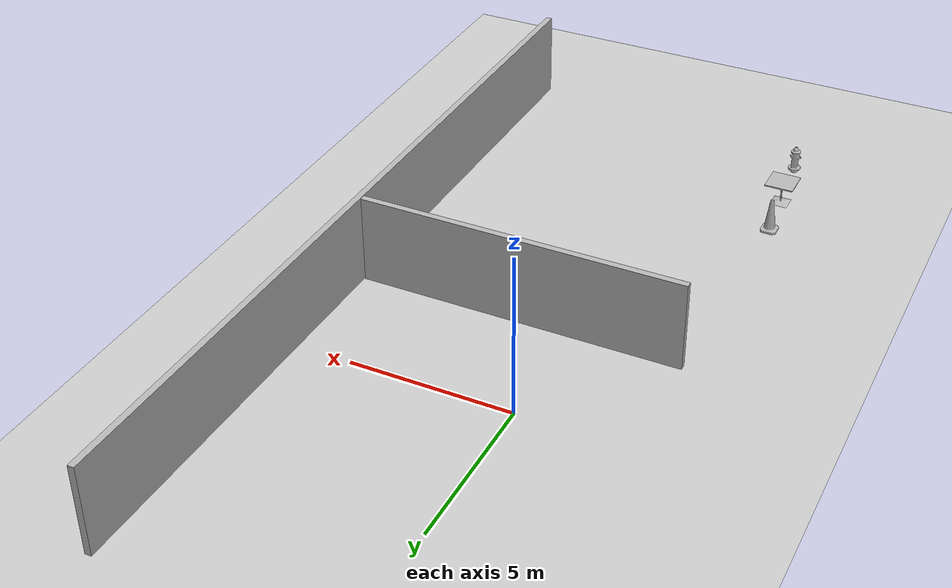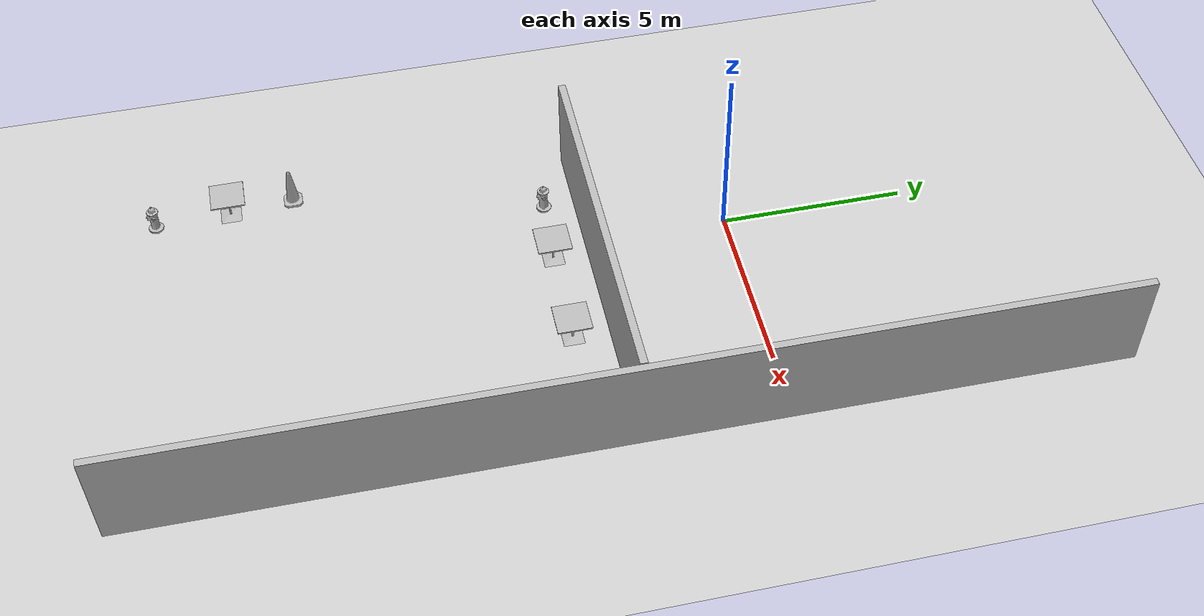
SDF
<sdf version="1.4">
 <world name="default">
  <model name="ground_plane">
   <static>1</static>
   <link name="link">
    <collision name="collision">
     <geometry><plane><normal>0 0 1</normal><size>100 100</size></plane></geometry>
     <surface><friction><ode><mu>100</mu><mu2>50</mu2></ode></friction></surface>
    </collision>
    <visual name="visual">
     <cast_shadows>0</cast_shadows>
     <geometry><plane><normal>0 0 1</normal><size>100 100</size></plane></geometry>
     <material>
      <script><uri>file://media/materials/scripts/gazebo.material</uri><name>Gazebo/Grey</name></script>
     </material>
    </visual>
    <velocity_decay><linear>0</linear><angular>0</angular></velocity_decay>
   </link>
  </model>
  <model name="house_4">
   <static>1</static>
   <link name="link">
    <pose>0 0 1.4 0 -0 0</pose>
    <collision name="collision"><geometry><box><size>10 0.2 2.8</size></box></geometry></collision>
    <visual name="visual">
     <cast_shadows>0</cast_shadows>
     <geometry><box><size>10 0.2 2.8</size></box></geometry>
     <material>
      <script>
       <uri>model://house/materials/scripts</uri>
       <uri>model://house/materials/textures</uri>
       <name>vrc/house_wall6</name>
      </script>
     </material>
    </visual>
    <velocity_decay><linear>0</linear><angular>0</angular></velocity_decay>
   </link>
   <pose>1.66221 -3.80627 0 0 -0 0</pose>
  </model>
  <model name="cafe_table_0">
   <static>1</static>
   <link name="link">
    <collision name="surface">
     <pose>0 0 0.755 0 -0 0</pose>
     <geometry><box><size>0.913 0.913 0.04</size></box></geometry>
    </collision>
    <collision name="column">
     <pose>0 0 0.37 0 -0 0</pose>
     <geometry><box><size>0.042 0.042 0.74</size></box></geometry>
    </collision>
    <collision name="base">
     <pose>0 0 0.02 0 -0 0</pose>
     <geometry><box><size>0.56 0.56 0.04</size></box></geometry>
    </collision>
    <visual name="visual">
     <geometry><mesh><uri>model://cafe_table/meshes/cafe_table.dae</uri></mesh></geometry>
    </visual>
    <velocity_decay><linear>0</linear><angular>0</angular></velocity_decay>
   </link>
   <pose>-3.1774 -13.201 0 0 -0 0</pose>
  </model>
  <model name="Construction Cone">
   <link name="link">
    <collision name="collision">
     <geometry>
      <mesh><scale>10 10 10</scale><uri>model://construction_cone/meshes/construction_cone.dae</uri></mesh>
     </geometry>
    </collision>
    <visual name="visual">
     <geometry>
      <mesh><scale>10 10 10</scale><uri>model://construction_cone/meshes/construction_cone.dae</uri></mesh>
     </geometry>
    </visual>
    <velocity_decay><linear>0</linear><angular>0</angular></velocity_decay>
    <inertial>
     <inertia><ixx>1</ixx><ixy>0</ixy><ixz>0</ixz><iyy>1</iyy><iyz>0</iyz><izz>1</izz></inertia>
     <mass>1</mass>
    </inertial>
   </link>
   <pose>-3.35592 -11.4793 -8e-06 -1e-06 -0 -0</pose>
   <static>0</static>
  </model>
  <model name="fire_hydrant">
   <static>1</static>
   <link name="link">
    <collision name="collision">
     <geometry><mesh><uri>model://fire_hydrant/meshes/fire_hydrant.dae</uri></mesh></geometry>
    </collision>
    <visual name="visual">
     <geometry><mesh><uri>model://fire_hydrant/meshes/fire_hydrant.dae</uri></mesh></geometry>
    </visual>
    <velocity_decay><linear>0</linear><angular>0</angular></velocity_decay>
   </link>
   <pose>-3.0034 -15.2201 0 0 -0 0</pose>
  </model>
  <model name="coke_can_0">
   <link name="link">
    <inertial>
     <pose>-0.01 -0.012 0.15 0 -0 0</pose>
     <mass>0.39</mass>
     <inertia><ixx>0.00058</ixx><ixy>0</ixy><ixz>0</ixz><iyy>0.00058</iyy><iyz>0</iyz><izz>0.00019</izz></inertia>
    </inertial>
    <collision name="collision">
     <pose>0 0 -0.46 0 -0 0</pose>
     <geometry><mesh><uri>model://coke_can/meshes/coke_can.dae</uri></mesh></geometry>
     <surface>
      <friction><ode><mu>1</mu><mu2>1</mu2></ode></friction>
      <contact><ode><kp>1e+07</kp><kd>1</kd><min_depth>0.001</min_depth><max_vel>0.1</max_vel></ode></contact>
     </surface>
    </collision>
    <visual name="visual">
     <pose>0 0 -0.46 0 -0 0</pose>
     <geometry><mesh><uri>model://coke_can/meshes/coke_can.dae</uri></mesh></geometry>
    </visual>
    <velocity_decay><linear>0</linear><angular>0</angular></velocity_decay>
   </link>
   <pose>-2.74392 -12.1921 -0.004902 -0.064483 0.001252 0.000427</pose>
   <static>0</static>
  </model>
  <model name="fire_hydrant_2">
   <static>1</static>
   <link name="link">
    <collision name="collision">
     <geometry><mesh><uri>model://fire_hydrant/meshes/fire_hydrant.dae</uri></mesh></geometry>
    </collision>
    <visual name="visual">
     <geometry><mesh><uri>model://fire_hydrant/meshes/fire_hydrant.dae</uri></mesh></geometry>
    </visual>
    <velocity_decay><linear>0</linear><angular>0</angular></velocity_decay>
   </link>
   <pose>-1.48088 -4.74961 0 0 -0 0</pose>
  </model>
  <model name="coke_can_3">
   <link name="link">
    <inertial>
     <pose>-0.01 -0.012 0.15 0 -0 0</pose>
     <mass>0.39</mass>
     <inertia><ixx>0.00058</ixx><ixy>0</ixy><ixz>0</ixz><iyy>0.00058</iyy><iyz>0</iyz><izz>0.00019</izz></inertia>
    </inertial>
    <collision name="collision">
     <pose>0 0 -0.46 0 -0 0</pose>
     <geometry><mesh><uri>model://coke_can/meshes/coke_can.dae</uri></mesh></geometry>
     <surface>
      <friction><ode><mu>1</mu><mu2>1</mu2></ode></friction>
      <contact><ode><kp>1e+07</kp><kd>1</kd><min_depth>0.001</min_depth><max_vel>0.1</max_vel></ode></contact>
     </surface>
    </collision>
    <visual name="visual">
     <pose>0 0 -0.46 0 -0 0</pose>
     <geometry><mesh><uri>model://coke_can/meshes/coke_can.dae</uri></mesh></geometry>
    </visual>
    <velocity_decay><linear>0</linear><angular>0</angular></velocity_decay>
   </link>
   <pose>-2.47302 -14.2989 -0.004902 -0.064485 0.001251 0.000338</pose>
   <static>0</static>
  </model>
  <model name="cafe_table_4">
   <static>1</static>
   <link name="link">
    <collision name="surface">
     <pose>0 0 0.755 0 -0 0</pose>
     <geometry><box><size>0.913 0.913 0.04</size></box></geometry>
    </collision>
    <collision name="column">
     <pose>0 0 0.37 0 -0 0</pose>
     <geometry><box><size>0.042 0.042 0.74</size></box></geometry>
    </collision>
    <collision name="base">
     <pose>0 0 0.02 0 -0 0</pose>
     <geometry><box><size>0.56 0.56 0.04</size></box></geometry>
    </collision>
    <visual name="visual">
     <geometry><mesh><uri>model://cafe_table/meshes/cafe_table.dae</uri></mesh></geometry>
    </visual>
    <velocity_decay><linear>0</linear><angular>0</angular></velocity_decay>
   </link>
   <pose>0.349945 -4.84406 0 0 -0 0</pose>
  </model>
  <model name="cafe_table_5">
   <static>1</static>
   <link name="link">
    <collision name="surface">
     <pose>0 0 0.755 0 -0 0</pose>
     <geometry><box><size>0.913 0.913 0.04</size></box></geometry>
    </collision>
    <collision name="column">
     <pose>0 0 0.37 0 -0 0</pose>
     <geometry><box><size>0.042 0.042 0.74</size></box></geometry>
    </collision>
    <collision name="base">
     <pose>0 0 0.02 0 -0 0</pose>
     <geometry><box><size>0.56 0.56 0.04</size></box></geometry>
    </collision>
    <visual name="visual">
     <geometry><mesh><uri>model://cafe_table/meshes/cafe_table.dae</uri></mesh></geometry>
    </visual>
    <velocity_decay><linear>0</linear><angular>0</angular></velocity_decay>
   </link>
   <pose>3.17686 -4.88181 0 0 -0 0</pose>
  </model>
  <model name="house_1">
   <static>1</static>
   <link name="link">
    <pose>0 0 1.4 0 -0 0</pose>
    <collision name="collision"><geometry><box><size>26 0.2 2.8</size></box></geometry></collision>
    <visual name="visual">
     <cast_shadows>0</cast_shadows>
     <geometry><box><size>26 0.2 2.8</size></box></geometry>
     <material>
      <script>
       <uri>model://house/materials/scripts</uri>
       <uri>model://house/materials/textures</uri>
       <name>vrc/house_wall1</name>
      </script>
     </material>
    </visual>
    <velocity_decay><linear>0</linear><angular>0</angular></velocity_decay>
   </link>
   <pose>6.78307 -3.93093 0 0 -0 1.56335</pose>
  </model>
 </world>
</sdf>
